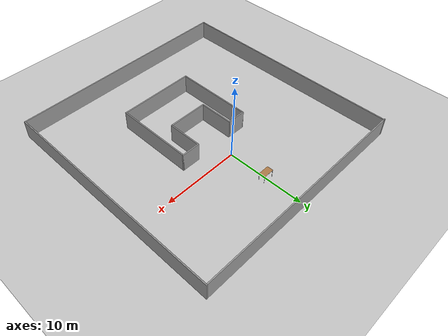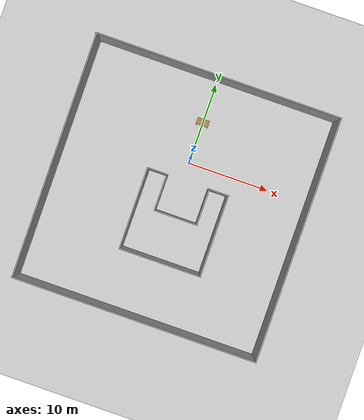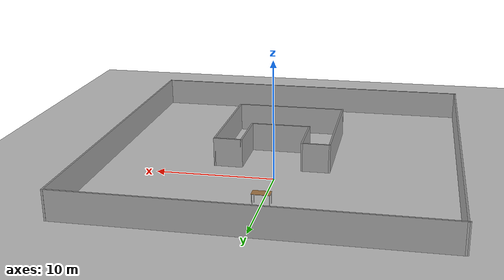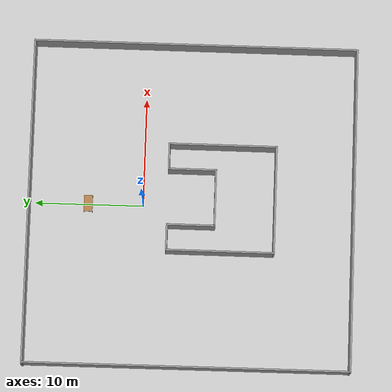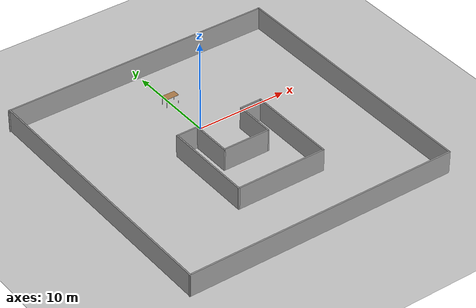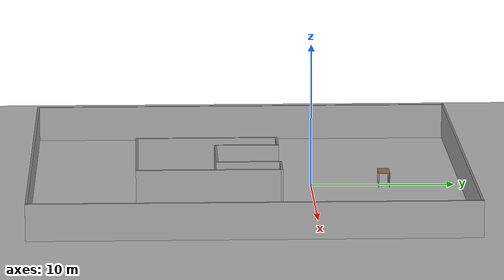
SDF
<sdf version="1.7">
 <world name="default">
  <light name="sun" type="directional">
   <pose>0 0 10 0 -0 0</pose>
   <diffuse>0.8 0.8 0.8 1</diffuse>
   <specular>0.2 0.2 0.2 1</specular>
   <attenuation>
    <range>1000</range>
    <constant>0.9</constant>
    <linear>0.01</linear>
    <quadratic>0.001</quadratic>
   </attenuation>
   <direction>-0.5 0.1 -0.9</direction>
   <spot><inner_angle>0</inner_angle><outer_angle>0</outer_angle><falloff>0</falloff></spot>
  </light>
  <model name="ground_plane">
   <static>1</static>
   <link name="link">
    <collision name="collision">
     <geometry><plane><normal>0 0 1</normal><size>100 100</size></plane></geometry>
     <surface>
      <contact><collide_bitmask>65535</collide_bitmask></contact>
      <friction><ode><mu>100</mu><mu2>50</mu2></ode></friction>
     </surface>
    </collision>
    <visual name="visual">
     <cast_shadows>0</cast_shadows>
     <geometry><plane><normal>0 0 1</normal><size>100 100</size></plane></geometry>
     <material>
      <script><uri>file://media/materials/scripts/gazebo.material</uri><name>Gazebo/Grey</name></script>
     </material>
    </visual>
   </link>
  </model>
  <gravity>0 0 -9.8</gravity>
  <magnetic_field>6e-06 2.3e-05 -4.2e-05</magnetic_field>
  <atmosphere type="adiabatic"/>
  <physics type="ode">
   <max_step_size>0.001</max_step_size>
   <real_time_factor>1</real_time_factor>
   <real_time_update_rate>1000</real_time_update_rate>
  </physics>
  <scene><ambient>0.4 0.4 0.4 1</ambient><background>0.7 0.7 0.7 1</background><shadows>1</shadows></scene>
  <spherical_coordinates>
   <surface_model>EARTH_WGS84</surface_model>
   <latitude_deg>0</latitude_deg>
   <longitude_deg>0</longitude_deg>
   <elevation>0</elevation>
   <heading_deg>0</heading_deg>
  </spherical_coordinates>
  <model name="10*10wall">
   <pose>1.13153 -7.177 0 0 -0 0</pose>
   <link name="Wall_0">
    <collision name="Wall_0_Collision">
     <geometry><box><size>10 0.15 2.5</size></box></geometry>
     <pose>0 0 1.25 0 -0 0</pose>
    </collision>
    <visual name="Wall_0_Visual">
     <pose>0 0 1.25 0 -0 0</pose>
     <geometry><box><size>10 0.15 2.5</size></box></geometry>
     <material>
      <script><uri>file://media/materials/scripts/gazebo.material</uri><name>Gazebo/Grey</name></script>
      <ambient>1 1 1 1</ambient>
     </material>
     <meta><layer>0</layer></meta>
    </visual>
    <pose>-0.497499 -4.925 0 0 -0 3.14159</pose>
   </link>
   <link name="Wall_10">
    <collision name="Wall_10_Collision">
     <geometry><box><size>10 0.15 2.5</size></box></geometry>
     <pose>0 0 1.25 0 -0 0</pose>
    </collision>
    <visual name="Wall_10_Visual">
     <pose>0 0 1.25 0 -0 0</pose>
     <geometry><box><size>10 0.15 2.5</size></box></geometry>
     <material>
      <script><uri>file://media/materials/scripts/gazebo.material</uri><name>Gazebo/Grey</name></script>
      <ambient>1 1 1 1</ambient>
     </material>
     <meta><layer>0</layer></meta>
    </visual>
    <pose>4.4275 0 0 0 -0 1.5708</pose>
   </link>
   <link name="Wall_2">
    <collision name="Wall_2_Collision">
     <geometry><box><size>10 0.15 2.5</size></box></geometry>
     <pose>0 0 1.25 0 -0 0</pose>
    </collision>
    <visual name="Wall_2_Visual">
     <pose>0 0 1.25 0 -0 0</pose>
     <geometry><box><size>10 0.15 2.5</size></box></geometry>
     <material>
      <script><uri>file://media/materials/scripts/gazebo.material</uri><name>Gazebo/Grey</name></script>
      <ambient>1 1 1 1</ambient>
     </material>
     <meta><layer>0</layer></meta>
    </visual>
    <pose>-5.4225 0 0 0 -0 1.5708</pose>
   </link>
   <link name="Wall_4">
    <collision name="Wall_4_Collision">
     <geometry><box><size>2.5 0.15 2.5</size></box></geometry>
     <pose>0 0 1.25 0 -0 0</pose>
    </collision>
    <visual name="Wall_4_Visual">
     <pose>0 0 1.25 0 -0 0</pose>
     <geometry><box><size>2.5 0.15 2.5</size></box></geometry>
     <material>
      <script><uri>file://media/materials/scripts/gazebo.material</uri><name>Gazebo/Grey</name></script>
      <ambient>1 1 1 1</ambient>
     </material>
     <meta><layer>0</layer></meta>
    </visual>
    <pose>-4.2475 4.925 0 0 -0 0</pose>
   </link>
   <link name="Wall_5">
    <collision name="Wall_5_Collision">
     <geometry><box><size>4.5 0.15 2.5</size></box></geometry>
     <pose>0 0 1.25 0 -0 0</pose>
    </collision>
    <visual name="Wall_5_Visual">
     <pose>0 0 1.25 0 -0 0</pose>
     <geometry><box><size>4.5 0.15 2.5</size></box></geometry>
     <material>
      <script><uri>file://media/materials/scripts/gazebo.material</uri><name>Gazebo/Grey</name></script>
      <ambient>1 1 1 1</ambient>
     </material>
     <meta><layer>0</layer></meta>
    </visual>
    <pose>-3.0725 2.75 0 0 -0 -1.5708</pose>
   </link>
   <link name="Wall_6">
    <collision name="Wall_6_Collision">
     <geometry><box><size>5.31383 0.15 2.5</size></box></geometry>
     <pose>0 0 1.25 0 -0 0</pose>
    </collision>
    <visual name="Wall_6_Visual">
     <pose>0 0 1.25 0 -0 0</pose>
     <geometry><box><size>5.31383 0.15 2.5</size></box></geometry>
     <material>
      <script><uri>file://media/materials/scripts/gazebo.material</uri><name>Gazebo/Grey</name></script>
      <ambient>1 1 1 1</ambient>
     </material>
     <meta><layer>0</layer></meta>
    </visual>
    <pose>-0.490587 0.575 0 0 -0 0</pose>
   </link>
   <link name="Wall_7">
    <collision name="Wall_7_Collision">
     <geometry><box><size>4.5 0.15 2.5</size></box></geometry>
     <pose>0 0 1.25 0 -0 0</pose>
    </collision>
    <visual name="Wall_7_Visual">
     <pose>0 0 1.25 0 -0 0</pose>
     <geometry><box><size>4.5 0.15 2.5</size></box></geometry>
     <material>
      <script><uri>file://media/materials/scripts/gazebo.material</uri><name>Gazebo/Grey</name></script>
      <ambient>1 1 1 1</ambient>
     </material>
     <meta><layer>0</layer></meta>
    </visual>
    <pose>2.09133 2.75 0 0 -0 1.5708</pose>
   </link>
   <link name="Wall_8">
    <collision name="Wall_8_Collision">
     <geometry><box><size>2.5 0.15 2.5</size></box></geometry>
     <pose>0 0 1.25 0 -0 0</pose>
    </collision>
    <visual name="Wall_8_Visual">
     <pose>0 0 1.25 0 -0 0</pose>
     <geometry><box><size>2.5 0.15 2.5</size></box></geometry>
     <material>
      <script><uri>file://media/materials/scripts/gazebo.material</uri><name>Gazebo/Grey</name></script>
      <ambient>1 1 1 1</ambient>
     </material>
     <meta><layer>0</layer></meta>
    </visual>
    <pose>3.26633 4.925 0 0 -0 0</pose>
   </link>
   <static>1</static>
  </model>
  <model name="30*30wall">
   <pose>-0.095758 -4.40739 0 0 -0 0</pose>
   <link name="Wall_1">
    <collision name="Wall_1_Collision">
     <geometry><box><size>30 0.15 2.5</size></box></geometry>
     <pose>0 0 1.25 0 -0 0</pose>
    </collision>
    <visual name="Wall_1_Visual">
     <pose>0 0 1.25 0 -0 0</pose>
     <geometry><box><size>30 0.15 2.5</size></box></geometry>
     <material>
      <script><uri>file://media/materials/scripts/gazebo.material</uri><name>Gazebo/Grey</name></script>
      <ambient>1 1 1 1</ambient>
     </material>
     <meta><layer>0</layer></meta>
    </visual>
    <pose>0.076009 -14.925 0 0 -0 0</pose>
   </link>
   <link name="Wall_2">
    <collision name="Wall_2_Collision">
     <geometry><box><size>30 0.15 2.5</size></box></geometry>
     <pose>0 0 1.25 0 -0 0</pose>
    </collision>
    <visual name="Wall_2_Visual">
     <pose>0 0 1.25 0 -0 0</pose>
     <geometry><box><size>30 0.15 2.5</size></box></geometry>
     <material>
      <script><uri>file://media/materials/scripts/gazebo.material</uri><name>Gazebo/Grey</name></script>
      <ambient>1 1 1 1</ambient>
     </material>
     <meta><layer>0</layer></meta>
    </visual>
    <pose>-14.849 0 0 0 -0 1.57387</pose>
   </link>
   <link name="Wall_3">
    <collision name="Wall_3_Collision">
     <geometry><box><size>30 0.15 2.5</size></box></geometry>
     <pose>0 0 1.25 0 -0 0</pose>
    </collision>
    <visual name="Wall_3_Visual">
     <pose>0 0 1.25 0 -0 0</pose>
     <geometry><box><size>30 0.15 2.5</size></box></geometry>
     <material>
      <script><uri>file://media/materials/scripts/gazebo.material</uri><name>Gazebo/Grey</name></script>
      <ambient>1 1 1 1</ambient>
     </material>
     <meta><layer>0</layer></meta>
    </visual>
    <pose>15.001 0 0 0 -0 1.5708</pose>
   </link>
   <link name="Wall_4">
    <collision name="Wall_4_Collision">
     <geometry><box><size>30 0.15 2.5</size></box></geometry>
     <pose>0 0 1.25 0 -0 0</pose>
    </collision>
    <visual name="Wall_4_Visual">
     <pose>0 0 1.25 0 -0 0</pose>
     <geometry><box><size>30 0.15 2.5</size></box></geometry>
     <material>
      <script><uri>file://media/materials/scripts/gazebo.material</uri><name>Gazebo/Grey</name></script>
      <ambient>1 1 1 1</ambient>
     </material>
     <meta><layer>0</layer></meta>
    </visual>
    <pose>-0.07601 14.9134 0 0 -0 0</pose>
   </link>
   <static>1</static>
  </model>
  <model name="table">
   <static>1</static>
   <link name="link">
    <collision name="surface">
     <pose>0 0 1 0 -0 0</pose>
     <geometry><box><size>1.5 0.8 0.03</size></box></geometry>
     <surface><friction><ode><mu>0.6</mu><mu2>0.6</mu2></ode></friction></surface>
    </collision>
    <visual name="visual1">
     <pose>0 0 1 0 -0 0</pose>
     <geometry><box><size>1.5 0.8 0.03</size></box></geometry>
     <material>
      <script><uri>file://media/materials/scripts/gazebo.material</uri><name>Gazebo/Wood</name></script>
     </material>
    </visual>
    <collision name="front_left_leg">
     <pose>0.68 0.38 0.5 0 -0 0</pose>
     <geometry><cylinder><radius>0.02</radius><length>1</length></cylinder></geometry>
    </collision>
    <visual name="front_left_leg">
     <pose>0.68 0.38 0.5 0 -0 0</pose>
     <geometry><cylinder><radius>0.02</radius><length>1</length></cylinder></geometry>
     <material>
      <script><uri>file://media/materials/scripts/gazebo.material</uri><name>Gazebo/Grey</name></script>
     </material>
    </visual>
    <collision name="front_right_leg">
     <pose>0.68 -0.38 0.5 0 -0 0</pose>
     <geometry><cylinder><radius>0.02</radius><length>1</length></cylinder></geometry>
    </collision>
    <visual name="front_right_leg">
     <pose>0.68 -0.38 0.5 0 -0 0</pose>
     <geometry><cylinder><radius>0.02</radius><length>1</length></cylinder></geometry>
     <material>
      <script><uri>file://media/materials/scripts/gazebo.material</uri><name>Gazebo/Grey</name></script>
     </material>
    </visual>
    <collision name="back_right_leg">
     <pose>-0.68 -0.38 0.5 0 -0 0</pose>
     <geometry><cylinder><radius>0.02</radius><length>1</length></cylinder></geometry>
    </collision>
    <visual name="back_right_leg">
     <pose>-0.68 -0.38 0.5 0 -0 0</pose>
     <geometry><cylinder><radius>0.02</radius><length>1</length></cylinder></geometry>
     <material>
      <script><uri>file://media/materials/scripts/gazebo.material</uri><name>Gazebo/Grey</name></script>
     </material>
    </visual>
    <collision name="back_left_leg">
     <pose>-0.68 0.38 0.5 0 -0 0</pose>
     <geometry><cylinder><radius>0.02</radius><length>1</length></cylinder></geometry>
    </collision>
    <visual name="back_left_leg">
     <pose>-0.68 0.38 0.5 0 -0 0</pose>
     <geometry><cylinder><radius>0.02</radius><length>1</length></cylinder></geometry>
     <material>
      <script><uri>file://media/materials/scripts/gazebo.material</uri><name>Gazebo/Grey</name></script>
     </material>
    </visual>
   </link>
   <pose>-0.019889 5.06926 0 0 -0 0</pose>
  </model>
 </world>
</sdf>
